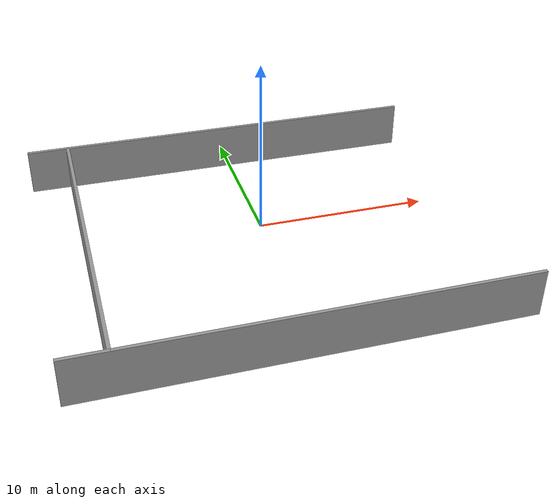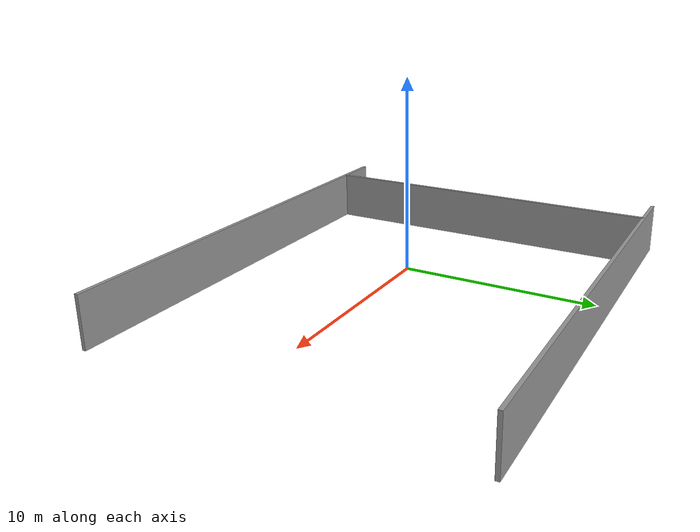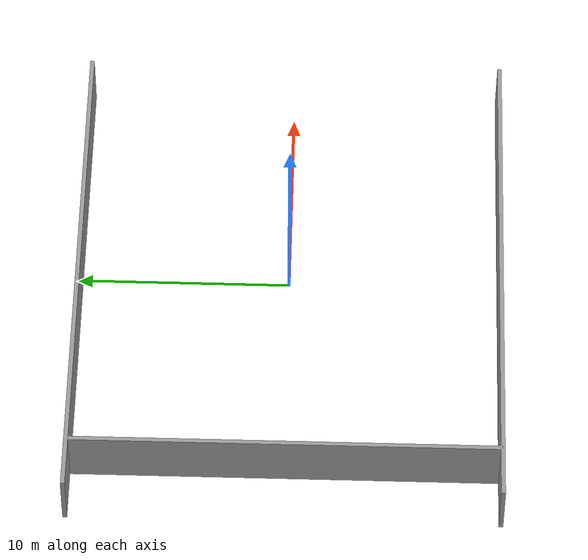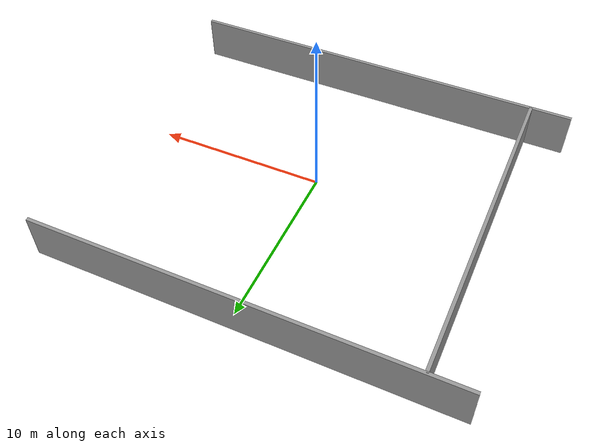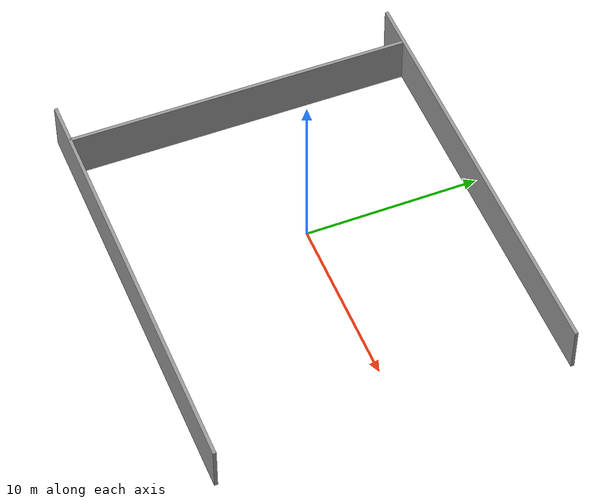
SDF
<?xml version="1.0" ?>
<sdf version="1.5">
  <model name="warehouse_walls">
    <static>true</static>
    <link name="wall1_link">
      <pose>-10 0 0 0 0 1.57</pose>
      <collision name="collision">
        <geometry>
          <box>
            <size>20 0.2 2.8</size>
          </box>
        </geometry>
      </collision>
      <visual name="wall1_visual">
        <cast_shadows>false</cast_shadows>
        <geometry>
          <box>
            <size>20 0.2 2.8</size>
          </box>
        </geometry>
        <material>
          <script>
            <uri>model://grey_wall/materials/scripts</uri>
            <uri>model://grey_wall/materials/textures</uri>
            <name>vrc/grey_wall</name>
          </script>
        </material>
      </visual>
    </link>

    <link name="wall2_link">
      <pose>0 -10 0 0 0 0</pose>
      <collision name="wall2_collision">
        <geometry>
          <box>
            <size>25 0.2 2.8</size>
          </box>
        </geometry>
      </collision>
      <visual name="wall2_visual">
        <cast_shadows>false</cast_shadows>
        <geometry>
          <box>
            <size>25 0.2 2.8</size>
          </box>
        </geometry>
        <material>
          <script>
            <uri>model://grey_wall/materials/scripts</uri>
            <uri>model://grey_wall/materials/textures</uri>
            <name>vrc/grey_wall</name>
          </script>
        </material>
      </visual>
    </link>

    <link name="wall3_link">
      <pose>0 10 0 0 0 0</pose>
      <collision name="wall3_collision">
        <geometry>
          <box>
            <size>25 0.2 2.8</size>
          </box>
        </geometry>
      </collision>
      <visual name="wall3_visual">
        <cast_shadows>false</cast_shadows>
        <geometry>
          <box>
            <size>25 0.2 2.8</size>
          </box>
        </geometry>
        <material>
          <script>
            <uri>model://grey_wall/materials/scripts</uri>
            <uri>model://grey_wall/materials/textures</uri>
            <name>vrc/grey_wall</name>
          </script>
        </material>
      </visual>
    </link>

  </model>
</sdf>
